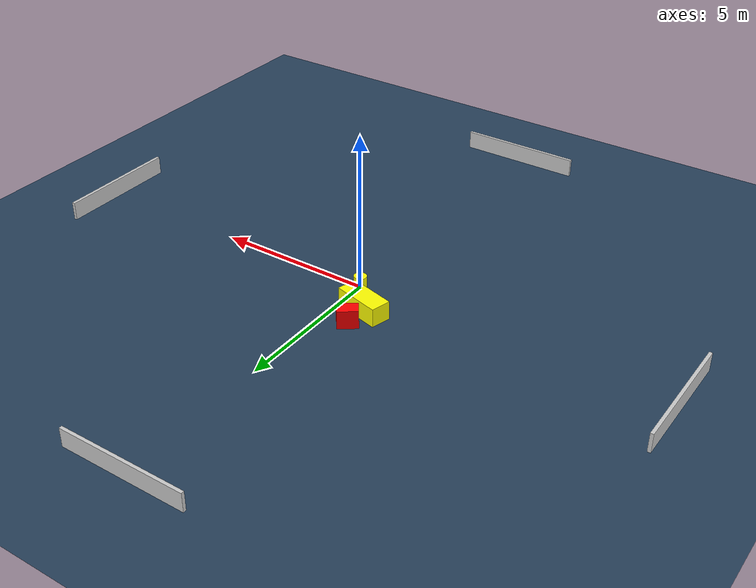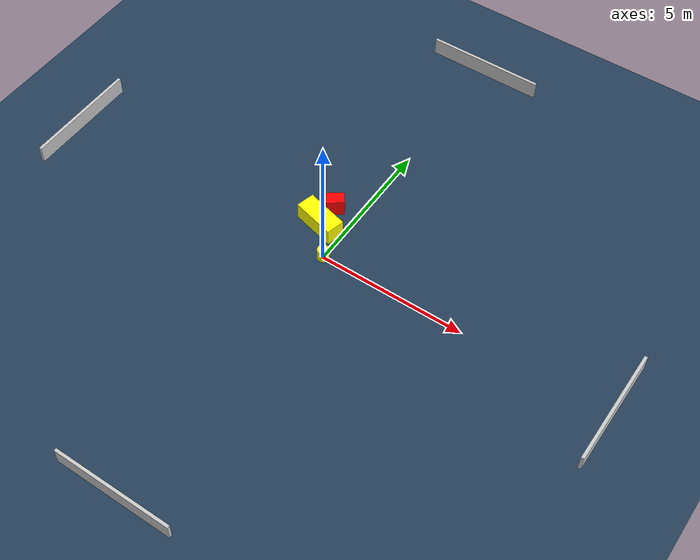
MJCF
<?xml version="1.0" ?>
<mujoco model="generated_environment">
  <option timestep="0.01" integrator="RK4" cone="elliptic"/>
  <default>
    <geom density="1"/>
  </default>
  <asset>
    <texture builtin="gradient" height="3072" name="skybox" rgb1="0.3 0.5 0.7" rgb2="0 0 0" type="skybox" width="512"/>
    <texture builtin="checker" height="300" name="groundplane" rgb1="0.2 0.3 0.4" rgb2="0.1 0.2 0.3" type="2d" width="300"/>
    <material name="groundplane" reflectance="0.2" texrepeat="5 5" texture="groundplane"/>
  </asset>
  <worldbody>
    <light dir="0 0 -1" directional="true" pos="0 0 1.5"/>
    <geom condim="3" friction="0.5 0.005 0.001" material="groundplane" name="floor" pos="0 0 0" size="0 0 0.05" type="plane"/>
    <body name="walls">
      <geom name="wall_1" condim="4" pos="-10.0 0.0 0.3" rgba="0.800000011920929 0.800000011920929 0.800000011920929 1.0" size="0.05 2.0 0.3" type="box"/>
      <geom name="wall_2" condim="4" pos="10.0 0.0 0.3" rgba="0.800000011920929 0.800000011920929 0.800000011920929 1.0" size="0.05 2.0 0.3" type="box"/>
      <geom name="wall_3" condim="4" pos="0.0 -10.0 0.3" rgba="0.800000011920929 0.800000011920929 0.800000011920929 1.0" size="2.0 0.05 0.3" type="box"/>
      <geom name="wall_4" condim="4" pos="0.0 10.0 0.3" rgba="0.800000011920929 0.800000011920929 0.800000011920929 1.0" size="2.0 0.05 0.3" type="box"/>
    </body>
    <body name="robot">
      <joint name="joint_x" type="slide" pos="0 0 0" axis="1 0 0"/>
      <joint name="joint_y" type="slide" pos="0 0 0" axis="0 1 0"/>
      <geom name="robot" type="cylinder" pos="0.0 0.0 0.2" size="0.2 0.2 0.0" mass="5.0" friction="1.0 0.005 0.0001" condim="4" rgba="1.0 1.0 0.0 1.0"/>
    </body>
    <body name="obstacle_1_movable">
      <geom name="obstacle_1_movable" condim="4" pos="-0.8180104336653377 1.0105210896921863 0.3" euler="0 0 75.32064184167321" friction="0.0 0.005 0.001" rgba="1.0 1.0 0.0 1.0" size="0.3186503080637936 0.7447061677386753 0.3" type="box" mass="0.1"/>
      <joint type="free"/>
    </body>
    <body name="obstacle_2_static">
      <geom name="obstacle_2_static" condim="4" pos="-0.8027160289310137 1.8018981571782706 0.3" euler="0 0 216.86884251270985" friction="0.0 0.005 0.001" rgba="1.0 0.0 0.0 1.0" size="0.3194571079711201 0.21187389059935738 0.3" type="box"/>
    </body>
  </worldbody>
  <actuator>
    <motor name="actuator_x" joint="joint_x" gear="1" ctrlrange="-1 1"/>
    <motor name="actuator_y" joint="joint_y" gear="1" ctrlrange="-1 1"/>
  </actuator>
</mujoco>
